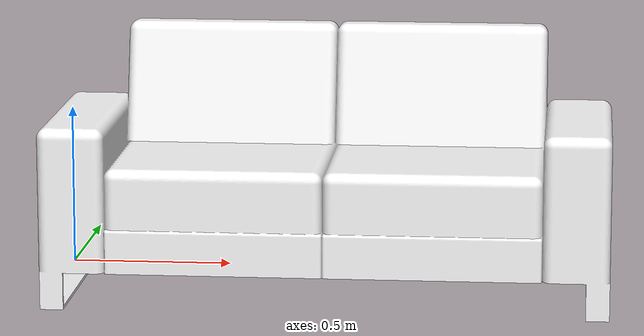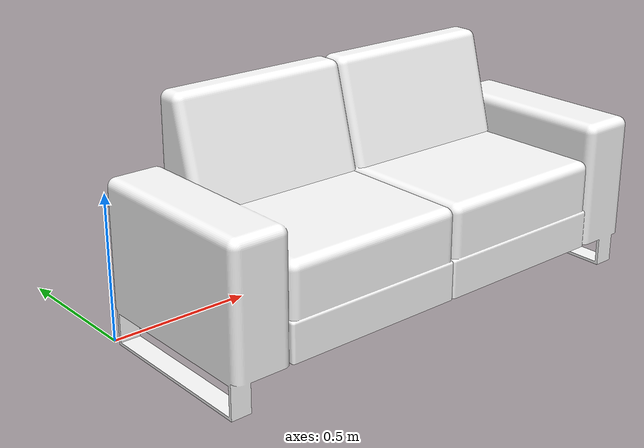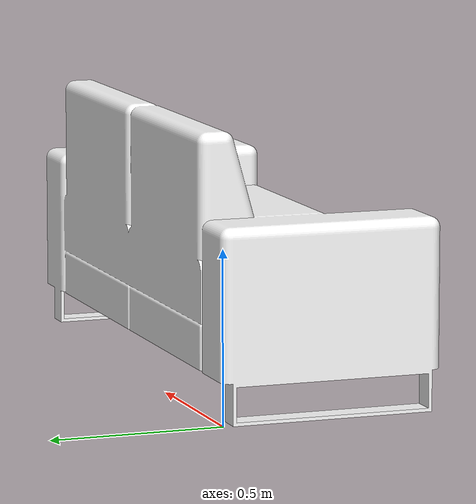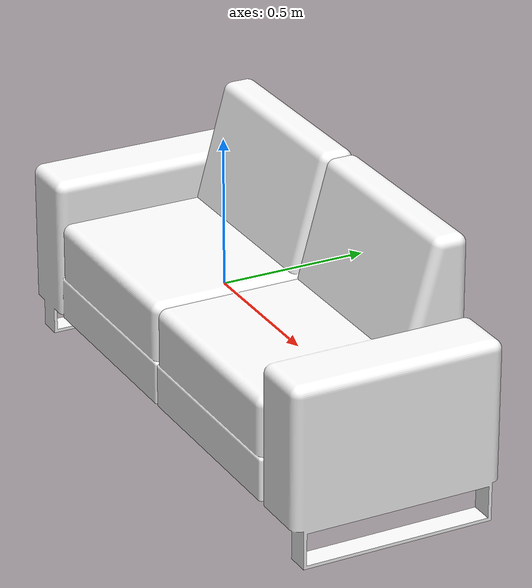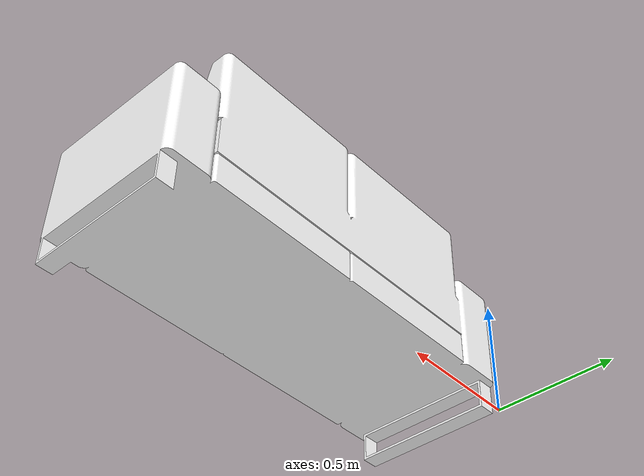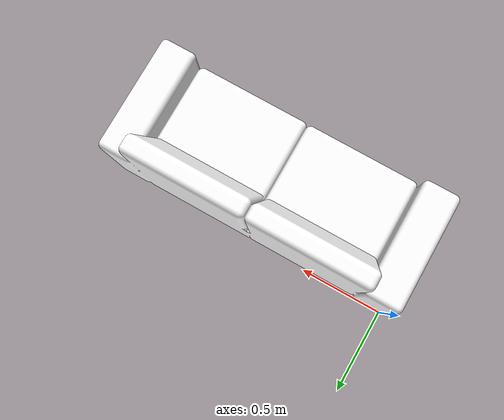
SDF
<?xml version="1.0" ?>
<sdf version="1.6">

  <!-- Model -->
  <model name="sofa">
    <pose>0 0 0 0 0 0</pose>
    <static>true</static>

    <!-- Link -->
    <link name="link">
      <visual name="visual">
        <geometry>
          <mesh>
            <scale>1 1 1</scale>
            <uri>model://sofa/meshes/sofa.dae</uri>
          </mesh>
        </geometry>
        <material>
          <script>
            <uri>model://sofa/materials/textures</uri>
            <uri>model://sofa/materials/scripts</uri>
            <name>SofaTexture</name>
          </script>
          <ambient>1 1 1 1</ambient>
          <diffuse>1 1 1 1</diffuse>
          <specular>1 1 1 1</specular>
          <emissive>0 0 0 1</emissive>
        </material>
      </visual>

    </link>

  </model>
</sdf>
